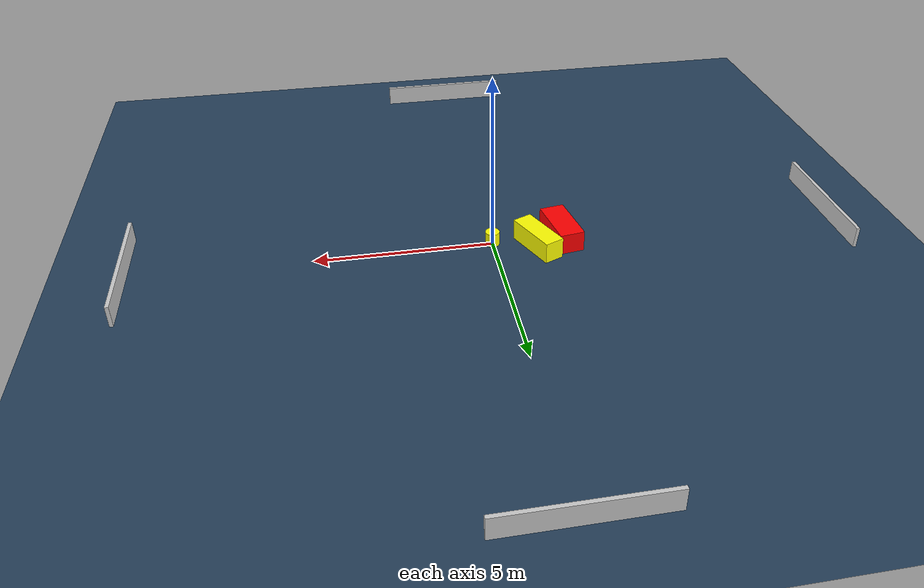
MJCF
<?xml version="1.0" ?>
<mujoco model="generated_environment">
  <option timestep="0.01" integrator="RK4" cone="elliptic"/>
  <default>
    <geom density="1"/>
  </default>
  <asset>
    <texture builtin="gradient" height="3072" name="skybox" rgb1="0.3 0.5 0.7" rgb2="0 0 0" type="skybox" width="512"/>
    <texture builtin="checker" height="300" name="groundplane" rgb1="0.2 0.3 0.4" rgb2="0.1 0.2 0.3" type="2d" width="300"/>
    <material name="groundplane" reflectance="0.2" texrepeat="5 5" texture="groundplane"/>
  </asset>
  <worldbody>
    <light dir="0 0 -1" directional="true" pos="0 0 1.5"/>
    <geom condim="3" friction="0.5 0.005 0.001" material="groundplane" name="floor" pos="0 0 0" size="0 0 0.05" type="plane"/>
    <body name="walls">
      <geom name="wall_1" condim="4" pos="-10.0 0.0 0.3" rgba="0.800000011920929 0.800000011920929 0.800000011920929 1.0" size="0.05 2.0 0.3" type="box"/>
      <geom name="wall_2" condim="4" pos="10.0 0.0 0.3" rgba="0.800000011920929 0.800000011920929 0.800000011920929 1.0" size="0.05 2.0 0.3" type="box"/>
      <geom name="wall_3" condim="4" pos="0.0 -10.0 0.3" rgba="0.800000011920929 0.800000011920929 0.800000011920929 1.0" size="2.0 0.05 0.3" type="box"/>
      <geom name="wall_4" condim="4" pos="0.0 10.0 0.3" rgba="0.800000011920929 0.800000011920929 0.800000011920929 1.0" size="2.0 0.05 0.3" type="box"/>
    </body>
    <body name="robot">
      <joint name="joint_x" type="slide" pos="0 0 0" axis="1 0 0"/>
      <joint name="joint_y" type="slide" pos="0 0 0" axis="0 1 0"/>
      <geom name="robot" type="cylinder" pos="0.0 0.0 0.2" size="0.2 0.2 0.0" mass="5.0" friction="1.0 0.005 0.0001" condim="4" rgba="1.0 1.0 0.0 1.0"/>
    </body>
    <body name="obstacle_1_movable">
      <geom name="obstacle_1_movable" condim="4" pos="-1.215763507270133 0.4155383699999659 0.3" euler="0 0 203.66400901656732" friction="0.0 0.005 0.001" rgba="1.0 1.0 0.0 1.0" size="0.28438393078305896 0.7733545668449868 0.3" type="box" mass="0.1"/>
      <joint type="free"/>
    </body>
    <body name="obstacle_2_static">
      <geom name="obstacle_2_static" condim="4" pos="-1.9812350131407441 0.07045230022959997 0.3" euler="0 0 188.90620416022787" friction="0.0 0.005 0.001" rgba="1.0 0.0 0.0 1.0" size="0.3551761004176247 0.7779091425069682 0.3" type="box"/>
    </body>
  </worldbody>
  <actuator>
    <motor name="actuator_x" joint="joint_x" gear="1" ctrlrange="-1 1"/>
    <motor name="actuator_y" joint="joint_y" gear="1" ctrlrange="-1 1"/>
  </actuator>
</mujoco>
